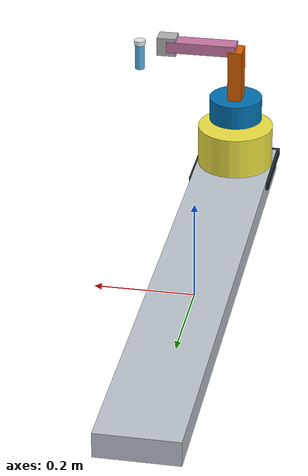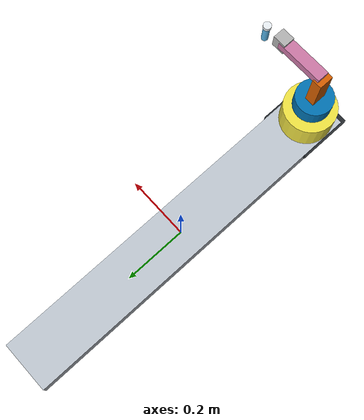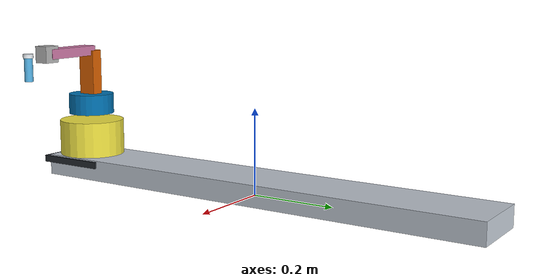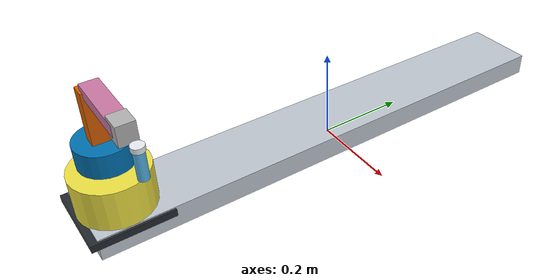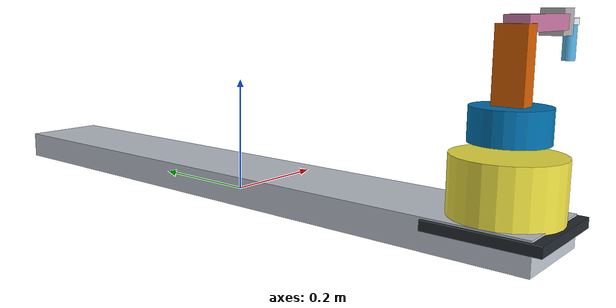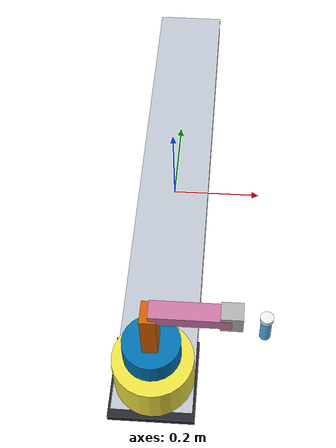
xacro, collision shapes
<?xml version="1.0"?>
<!-- |    DOBOT MAGICIAN MODULAR URDF / XACRO SYSTEM                                    | -->
<!-- |    Supports:                                                                      | -->
<!-- |    1. Standalone Dobot Magician 4-DOF or 5-DOF on 1.0m Linear Sliding Rail       | -->
<!-- |    2. Interchangeable Tools: Suction Cup, Pneumatic Gripper, Writing Pen          | -->
<!-- |    3. Photorealistic Collada (.dae) Meshes with Full Texture & Color Support      | -->
<!-- |    4. Closed-chain Parallelogram Kinematics / Mimic Linkage                       | -->
<robot name="dobot_magician_system" xmlns:xacro="http://www.ros.org/wiki/xacro">

  <!-- ==================== CONFIGURATION ARGUMENTS ==================== -->
  <xacro:arg name="has_rail" default="true" />
  <xacro:arg name="tool" default="suction_cup" />
  <xacro:arg name="rail_length" default="1.000" />
  <xacro:arg name="mesh_path" default="package://dobot_description/meshes/dae" />

  <!-- ==================== KINEMATIC CONSTANTS ==================== -->
  <xacro:property name="PI" value="3.1415926535897931" />
  <xacro:property name="L1_BASE_HEIGHT" value="0.138" />
  <xacro:property name="L2_REAR_ARM"    value="0.135" />
  <xacro:property name="L3_FOREARM"     value="0.147" />
  <xacro:property name="L4_WRIST"       value="0.060" />
  <xacro:property name="RAIL_STROKE"    value="$(arg rail_length)" />
  <xacro:property name="MESH_DIR"       value="$(arg mesh_path)" />

  <!-- ==================== MATERIALS ==================== -->
  <material name="mat_dobot_white">
    <color rgba="0.94 0.95 0.96 1.0"/>
  </material>
  <material name="mat_dobot_black">
    <color rgba="0.14 0.16 0.18 1.0"/>
  </material>
  <material name="mat_dobot_blue">
    <color rgba="0.094 0.392 0.671 1.0"/>
  </material>
  <material name="mat_rail_silver">
    <color rgba="0.75 0.78 0.82 1.0"/>
  </material>
  <material name="mat_steel_chrome">
    <color rgba="0.92 0.94 0.96 1.0"/>
  </material>
  <material name="mat_brass">
    <color rgba="0.82 0.68 0.21 1.0"/>
  </material>

  <!-- ==================== WORLD / ROOT LINK ==================== -->
  <link name="world"/>

  <!-- ==================== OPTIONAL SLIDING RAIL KIT (1.0m) ==================== -->
  <xacro:if value="$(arg has_rail)">
    <!-- Base mounting joint to world -->
    <joint name="world_to_rail_joint" type="fixed">
      <parent link="world"/>
      <child link="rail_base_link"/>
      <origin xyz="0 0 0" rpy="0 0 0"/>
    </joint>

    <link name="rail_base_link">
      <!-- Main aluminum profile -->
      <visual>
        <origin xyz="0 0 0.013" rpy="0 0 0"/>
        <geometry>
          <box size="0.140 1.120 0.026"/>
        </geometry>
        <material name="mat_rail_silver"/>
      </visual>
      <!-- Dual chrome guide shafts (12mm dia) -->
      <visual>
        <origin xyz="0.045 0 0.028" rpy="${PI/2} 0 0"/>
        <geometry>
          <cylinder radius="0.006" length="1.100"/>
        </geometry>
        <material name="mat_steel_chrome"/>
      </visual>
      <visual>
        <origin xyz="-0.045 0 0.028" rpy="${PI/2} 0 0"/>
        <geometry>
          <cylinder radius="0.006" length="1.100"/>
        </geometry>
        <material name="mat_steel_chrome"/>
      </visual>
      <!-- Timing belt slot -->
      <visual>
        <origin xyz="0 0 0.020" rpy="0 0 0"/>
        <geometry>
          <box size="0.028 1.060 0.006"/>
        </geometry>
        <material name="mat_dobot_black"/>
      </visual>
      <!-- NEMA Stepper Motor Enclosure -->
      <visual>
        <origin xyz="0 -0.535 0.030" rpy="0 0 0"/>
        <geometry>
          <box size="0.110 0.070 0.050"/>
        </geometry>
        <material name="mat_dobot_black"/>
      </visual>
      <!-- End plate & Idler pulley block -->
      <visual>
        <origin xyz="0 0.535 0.025" rpy="0 0 0"/>
        <geometry>
          <box size="0.110 0.050 0.040"/>
        </geometry>
        <material name="mat_dobot_black"/>
      </visual>
      <!-- Limit switch (Homing sensor at 0mm) -->
      <visual>
        <origin xyz="0.055 -0.470 0.032" rpy="0 0 0"/>
        <geometry>
          <box size="0.015 0.025 0.020"/>
        </geometry>
        <material name="mat_brass"/>
      </visual>
      <collision>
        <origin xyz="0 0 0.020" rpy="0 0 0"/>
        <geometry>
          <box size="0.160 1.140 0.050"/>
        </geometry>
      </collision>
      <inertial>
        <origin xyz="0 0 0.015" rpy="0 0 0"/>
        <mass value="4.85"/>
        <inertia ixx="0.508" ixy="0.0" ixz="0.0" iyy="0.012" iyz="0.0" izz="0.518"/>
      </inertial>
    </link>

    <!-- Rail Prismatic Joint (L-Axis: 0 to 1.000m) -->
    <joint name="rail_joint" type="prismatic">
      <parent link="rail_base_link"/>
      <child link="rail_carriage_link"/>
      <origin xyz="0 -0.500 0.026" rpy="0 0 0"/>
      <axis xyz="0 1 0"/>
      <limit lower="0.0" upper="${RAIL_STROKE}" effort="150.0" velocity="0.08"/>
      <dynamics damping="15.0" friction="5.0"/>
    </joint>

    <link name="rail_carriage_link">
      <!-- Carriage plate -->
      <visual>
        <origin xyz="0 0 0.008" rpy="0 0 0"/>
        <geometry>
          <box size="0.170 0.170 0.016"/>
        </geometry>
        <material name="mat_dobot_black"/>
      </visual>
      <!-- Trip flag for limit switch -->
      <visual>
        <origin xyz="0.055 0.020 0.006" rpy="0 0 0"/>
        <geometry>
          <box size="0.008 0.015 0.012"/>
        </geometry>
        <material name="mat_brass"/>
      </visual>
      <collision>
        <origin xyz="0 0 0.008" rpy="0 0 0"/>
        <geometry>
          <box size="0.170 0.170 0.016"/>
        </geometry>
      </collision>
      <inertial>
        <origin xyz="0 0 0.008" rpy="0 0 0"/>
        <mass value="0.95"/>
        <inertia ixx="0.0024" ixy="0.0" ixz="0.0" iyy="0.0024" iyz="0.0" izz="0.0046"/>
      </inertial>
    </link>

    <!-- Dobot mounted on Carriage Plate -->
    <joint name="dobot_root_joint" type="fixed">
      <parent link="rail_carriage_link"/>
      <child link="dobot_base_link"/>
      <origin xyz="0 0 0.016" rpy="0 0 0"/>
    </joint>
  </xacro:if>

  <!-- ==================== STANDALONE MODE (NO RAIL) ==================== -->
  <xacro:unless value="$(arg has_rail)">
    <joint name="dobot_root_joint" type="fixed">
      <parent link="world"/>
      <child link="dobot_base_link"/>
      <origin xyz="0 0 0" rpy="0 0 0"/>
    </joint>
  </xacro:unless>

  <!-- ==================== DOBOT MAGICIAN ARM LINKS & JOINTS ==================== -->

  <!-- 1. BASE LINK -->
  <link name="dobot_base_link">
    <visual>
      <origin xyz="0 0 0.0486" rpy="0 0 0"/>
      <geometry>
        <mesh filename="${MESH_DIR}/magicianBase.dae"/>
      </geometry>
    </visual>
    <collision>
      <origin xyz="0 0 0.045" rpy="0 0 0"/>
      <geometry>
        <cylinder radius="0.080" length="0.090"/>
      </geometry>
    </collision>
    <inertial>
      <origin xyz="0 0 0.04" rpy="0 0 0"/>
      <mass value="1.20"/>
      <inertia ixx="0.003" ixy="0.0" ixz="0.0" iyy="0.003" iyz="0.0" izz="0.004"/>
    </inertial>
  </link>

  <!-- 2. JOINT 1 (Pan / Rotation around Z: -90° to +90°) -->
  <joint name="dobot_joint_1" type="revolute">
    <parent link="dobot_base_link"/>
    <child link="dobot_link_1"/>
    <origin xyz="0 0 0.1313" rpy="0 0 0"/>
    <axis xyz="0 0 1"/>
    <limit lower="-${PI/2}" upper="${PI/2}" effort="10.0" velocity="5.5"/>
    <dynamics damping="0.5" friction="0.1"/>
  </joint>

  <link name="dobot_link_1">
    <visual>
      <origin xyz="0 0 0" rpy="0 0 0"/>
      <geometry>
        <mesh filename="${MESH_DIR}/magicianLink1.dae"/>
      </geometry>
    </visual>
    <collision>
      <origin xyz="0 0 0" rpy="0 0 0"/>
      <geometry>
        <cylinder radius="0.056" length="0.050"/>
      </geometry>
    </collision>
    <inertial>
      <origin xyz="0 0 0.02" rpy="0 0 0"/>
      <mass value="0.85"/>
      <inertia ixx="0.001" ixy="0.0" ixz="0.0" iyy="0.001" iyz="0.0" izz="0.001"/>
    </inertial>
  </link>

  <!-- 3. JOINT 2 (Rear Arm / Pitch: 0° to 85°) -->
  <joint name="dobot_joint_2" type="revolute">
    <parent link="dobot_link_1"/>
    <child link="dobot_link_2"/>
    <origin xyz="0 0 0" rpy="0 0 0"/>
    <axis xyz="0 1 0"/>
    <limit lower="0.0" upper="${85 * PI / 180}" effort="12.0" velocity="5.5"/>
    <dynamics damping="0.5" friction="0.1"/>
  </joint>

  <link name="dobot_link_2">
    <visual>
      <origin xyz="0 0 0" rpy="0 -0.349066 0"/>
      <geometry>
        <mesh filename="${MESH_DIR}/magicianLink2.dae"/>
      </geometry>
    </visual>
    <collision>
      <origin xyz="0 0 ${L2_REAR_ARM/2}" rpy="0 0 0"/>
      <geometry>
        <box size="0.030 0.045 ${L2_REAR_ARM}"/>
      </geometry>
    </collision>
    <inertial>
      <origin xyz="0 0 ${L2_REAR_ARM/2}" rpy="0 0 0"/>
      <mass value="0.75"/>
      <inertia ixx="0.0015" ixy="0.0" ixz="0.0" iyy="0.0015" iyz="0.0" izz="0.0003"/>
    </inertial>
  </link>

  <!-- 4. JOINT 3 (Forearm / Pitch: -10° to 90°) -->
  <joint name="dobot_joint_3" type="revolute">
    <parent link="dobot_link_2"/>
    <child link="dobot_link_3"/>
    <origin xyz="0 0 ${L2_REAR_ARM}" rpy="0 0 0"/>
    <axis xyz="0 1 0"/>
    <limit lower="-${10 * PI / 180}" upper="${PI/2}" effort="10.0" velocity="5.5"/>
    <dynamics damping="0.5" friction="0.1"/>
  </joint>

  <link name="dobot_link_3">
    <visual>
      <origin xyz="0.016452 0 -0.133994" rpy="0 -0.471239 0"/>
      <geometry>
        <mesh filename="${MESH_DIR}/magicianLink3.dae"/>
      </geometry>
    </visual>
    <collision>
      <origin xyz="${L3_FOREARM/2} 0 0" rpy="0 0 0"/>
      <geometry>
        <box size="${L3_FOREARM} 0.036 0.024"/>
      </geometry>
    </collision>
    <inertial>
      <origin xyz="${L3_FOREARM/2} 0 0" rpy="0 0 0"/>
      <mass value="0.65"/>
      <inertia ixx="0.0002" ixy="0.0" ixz="0.0" iyy="0.0012" iyz="0.0" izz="0.0012"/>
    </inertial>
  </link>

  <!-- 5. JOINT 4 (Wrist / End-effector pitch alignment with base) -->
  <joint name="dobot_joint_4" type="revolute">
    <parent link="dobot_link_3"/>
    <child link="dobot_link_4"/>
    <origin xyz="${L3_FOREARM} 0 0" rpy="0 0 0"/>
    <axis xyz="0 1 0"/>
    <limit lower="-${PI}" upper="${PI}" effort="5.0" velocity="8.0"/>
    <dynamics damping="0.2" friction="0.05"/>
    <mimic joint="dobot_joint_2" multiplier="-1" offset="0"/>
  </joint>

  <link name="dobot_link_4">
    <visual>
      <origin xyz="-0.177151 0 -0.058595" rpy="0 0 0"/>
      <geometry>
        <mesh filename="${MESH_DIR}/magicianLink4_default.dae"/>
      </geometry>
    </visual>
    <collision>
      <origin xyz="0 0 0" rpy="0 0 0"/>
      <geometry>
        <box size="0.040 0.035 0.040"/>
      </geometry>
    </collision>
    <inertial>
      <origin xyz="0 0 0" rpy="0 0 0"/>
      <mass value="0.25"/>
      <inertia ixx="0.0001" ixy="0.0" ixz="0.0" iyy="0.0001" iyz="0.0" izz="0.0001"/>
    </inertial>
  </link>

  <!-- 6. JOINT 5 (Wrist Servo R - Rotation around Z: -90° to +90°) -->
  <joint name="dobot_joint_5_r" type="revolute">
    <parent link="dobot_link_4"/>
    <child link="dobot_tool_mount_link"/>
    <origin xyz="${L4_WRIST} 0 0" rpy="0 0 0"/>
    <axis xyz="0 0 1"/>
    <limit lower="-${PI/2}" upper="${PI/2}" effort="5.0" velocity="8.0"/>
    <dynamics damping="0.1" friction="0.02"/>
  </joint>

  <link name="dobot_tool_mount_link">
    <visual>
      <origin xyz="0 0 0" rpy="0 0 0"/>
      <geometry>
        <cylinder radius="0.012" length="0.010"/>
      </geometry>
      <material name="mat_steel_chrome"/>
    </visual>
    <collision>
      <origin xyz="0 0 0" rpy="0 0 0"/>
      <geometry>
        <cylinder radius="0.012" length="0.010"/>
      </geometry>
    </collision>
    <inertial>
      <origin xyz="0 0 0" rpy="0 0 0"/>
      <mass value="0.05"/>
      <inertia ixx="0.00001" ixy="0.0" ixz="0.0" iyy="0.00001" iyz="0.0" izz="0.00001"/>
    </inertial>
  </link>

  <!-- ==================== END-EFFECTOR TOOL OPTIONS ==================== -->

  <!-- OPTION A: SUCTION CUP (Default) -->
  <xacro:if value="${'$(arg tool)' == 'suction_cup'}">
    <joint name="tool_suction_joint" type="fixed">
      <parent link="dobot_tool_mount_link"/>
      <child link="dobot_tool_link"/>
      <origin xyz="0 0 0" rpy="0 0 0"/>
    </joint>

    <link name="dobot_tool_link">
      <visual>
        <origin xyz="-0.000081 0 -0.011843" rpy="0 0 0"/>
        <geometry>
          <mesh filename="${MESH_DIR}/suction_cup.dae"/>
        </geometry>
      </visual>
      <collision>
        <origin xyz="0 0 -0.030" rpy="0 0 0"/>
        <geometry>
          <cylinder radius="0.010" length="0.060"/>
        </geometry>
      </collision>
      <inertial>
        <origin xyz="0 0 -0.030" rpy="0 0 0"/>
        <mass value="0.10"/>
        <inertia ixx="0.00005" ixy="0.0" ixz="0.0" iyy="0.00005" iyz="0.0" izz="0.00002"/>
      </inertial>
    </link>

    <!-- TCP (Tool Center Point) -->
    <joint name="tcp_joint" type="fixed">
      <parent link="dobot_tool_link"/>
      <child link="dobot_tcp"/>
      <origin xyz="0 0 -0.060" rpy="0 0 0"/>
    </joint>
    <link name="dobot_tcp"/>
  </xacro:if>

  <!-- OPTION B: PNEUMATIC GRIPPER -->
  <xacro:if value="${'$(arg tool)' == 'gripper'}">
    <joint name="tool_gripper_joint" type="fixed">
      <parent link="dobot_tool_mount_link"/>
      <child link="dobot_tool_link"/>
      <origin xyz="0 0 0" rpy="0 0 0"/>
    </joint>

    <link name="dobot_tool_link">
      <visual>
        <origin xyz="0 0 0" rpy="0 0 0"/>
        <geometry>
          <mesh filename="${MESH_DIR}/magicianGripper.dae"/>
        </geometry>
      </visual>
      <collision>
        <origin xyz="0 0 -0.040" rpy="0 0 0"/>
        <geometry>
          <box size="0.035 0.055 0.080"/>
        </geometry>
      </collision>
      <inertial>
        <origin xyz="0 0 -0.040" rpy="0 0 0"/>
        <mass value="0.18"/>
        <inertia ixx="0.0001" ixy="0.0" ixz="0.0" iyy="0.0001" iyz="0.0" izz="0.00005"/>
      </inertial>
    </link>

    <!-- TCP (Tool Center Point at Gripper tips) -->
    <joint name="tcp_joint" type="fixed">
      <parent link="dobot_tool_link"/>
      <child link="dobot_tcp"/>
      <origin xyz="0 0 -0.080" rpy="0 0 0"/>
    </joint>
    <link name="dobot_tcp"/>
  </xacro:if>

  <!-- OPTION C: DRAWING PEN -->
  <xacro:if value="${'$(arg tool)' == 'pen'}">
    <joint name="tool_pen_joint" type="fixed">
      <parent link="dobot_tool_mount_link"/>
      <child link="dobot_tool_link"/>
      <origin xyz="0 0 0" rpy="0 0 0"/>
    </joint>

    <link name="dobot_tool_link">
      <visual>
        <origin xyz="0 0 0" rpy="0 0 0"/>
        <geometry>
          <mesh filename="${MESH_DIR}/magician_pen.dae"/>
        </geometry>
      </visual>
      <collision>
        <origin xyz="0 0 -0.050" rpy="0 0 0"/>
        <geometry>
          <cylinder radius="0.005" length="0.100"/>
        </geometry>
      </collision>
      <inertial>
        <origin xyz="0 0 -0.050" rpy="0 0 0"/>
        <mass value="0.08"/>
        <inertia ixx="0.00004" ixy="0.0" ixz="0.0" iyy="0.00004" iyz="0.0" izz="0.00001"/>
      </inertial>
    </link>

    <!-- TCP (Tool Center Point at Pen tip) -->
    <joint name="tcp_joint" type="fixed">
      <parent link="dobot_tool_link"/>
      <child link="dobot_tcp"/>
      <origin xyz="0 0 -0.100" rpy="0 0 0"/>
    </joint>
    <link name="dobot_tcp"/>
  </xacro:if>

</robot>
